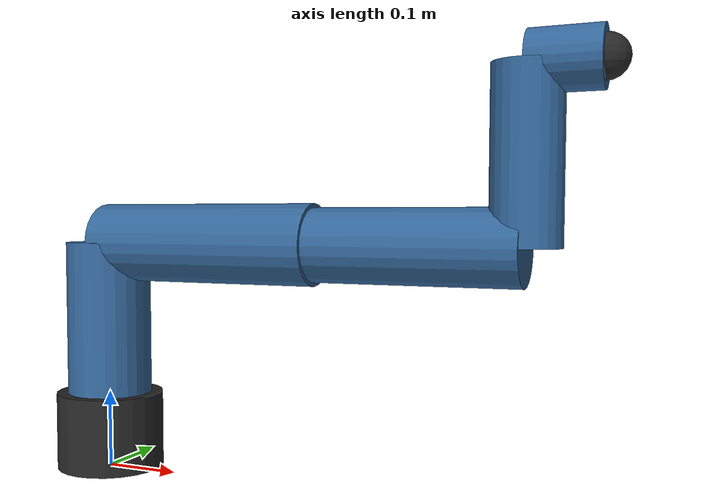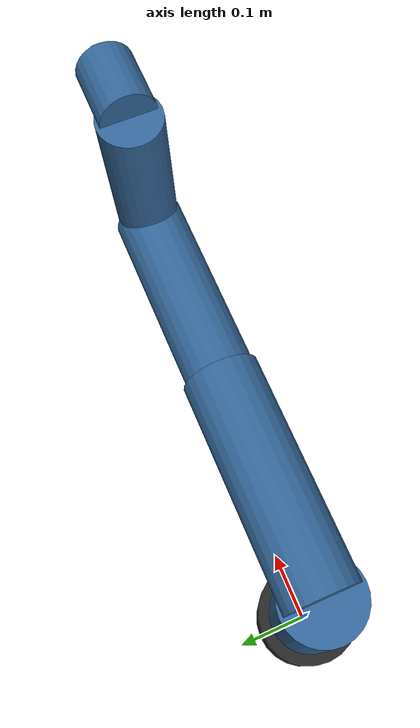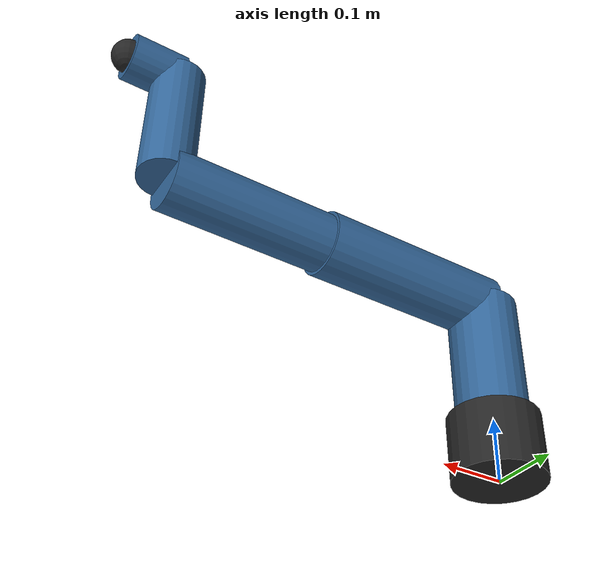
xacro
<?xml version="1.0"?>
<robot name="six_axis_arm" xmlns:xacro="http://www.ros.org/wiki/xacro">

  <!-- ===================== MATERIALS ===================== -->
  <material name="blue_grey">
    <color rgba="0.2 0.4 0.6 1.0"/>
  </material>
  <material name="dark_grey">
    <color rgba="0.15 0.15 0.15 1.0"/>
  </material>

  <!-- ===================== BASE LINK ===================== -->
  <link name="world"/>

  <joint name="world_to_base" type="fixed">
    <parent link="world"/>
    <child  link="base_link"/>
    <origin xyz="0 0 0" rpy="0 0 0"/>
  </joint>

  <link name="base_link">
    <visual>
      <origin xyz="0 0 0.05" rpy="0 0 0"/>
      <geometry><cylinder radius="0.07" length="0.1"/></geometry>
      <material name="dark_grey"/>
    </visual>
    <collision>
      <origin xyz="0 0 0.05" rpy="0 0 0"/>
      <geometry><cylinder radius="0.07" length="0.1"/></geometry>
    </collision>
    <inertial>
      <mass value="2.0"/>
      <origin xyz="0 0 0.05"/>
      <inertia ixx="0.0067" ixy="0" ixz="0"
               iyy="0.0067" iyz="0" izz="0.0098"/>
    </inertial>
  </link>

  <!-- ===================== JOINT 1 + LINK 1 ===================== -->
  <joint name="joint_1" type="revolute">
    <parent link="base_link"/>
    <child  link="link_1"/>
    <origin xyz="0 0 0.1" rpy="0 0 0"/>
    <axis xyz="0 0 1"/>
    <limit lower="-3.14159" upper="3.14159"
           effort="100" velocity="1.0"/>
    <dynamics damping="0.5" friction="0.1"/>
  </joint>

  <link name="link_1">
    <visual>
      <origin xyz="0 0 0.1" rpy="0 0 0"/>
      <geometry><cylinder radius="0.055" length="0.2"/></geometry>
      <material name="blue_grey"/>
    </visual>
    <collision>
      <origin xyz="0 0 0.1" rpy="0 0 0"/>
      <geometry><cylinder radius="0.055" length="0.2"/></geometry>
    </collision>
    <inertial>
      <mass value="1.5"/>
      <origin xyz="0 0 0.1"/>
      <inertia ixx="0.0058" ixy="0" ixz="0"
               iyy="0.0058" iyz="0" izz="0.0023"/>
    </inertial>
  </link>

  <!-- ===================== JOINT 2 + LINK 2 ===================== -->
  <joint name="joint_2" type="revolute">
    <parent link="link_1"/>
    <child  link="link_2"/>
    <origin xyz="0 0 0.2" rpy="0 0 0"/>
    <axis xyz="0 1 0"/>
    <limit lower="-1.5708" upper="1.5708"
           effort="100" velocity="1.0"/>
    <dynamics damping="0.5" friction="0.1"/>
  </joint>

  <link name="link_2">
    <visual>
      <origin xyz="0.15 0 0" rpy="0 1.5708 0"/>
      <geometry><cylinder radius="0.05" length="0.3"/></geometry>
      <material name="blue_grey"/>
    </visual>
    <collision>
      <origin xyz="0.15 0 0" rpy="0 1.5708 0"/>
      <geometry><cylinder radius="0.05" length="0.3"/></geometry>
    </collision>
    <inertial>
      <mass value="1.2"/>
      <origin xyz="0.15 0 0"/>
      <inertia ixx="0.0018" ixy="0" ixz="0"
               iyy="0.0094" iyz="0" izz="0.0094"/>
    </inertial>
  </link>

  <!-- ===================== JOINT 3 + LINK 3 ===================== -->
  <joint name="joint_3" type="revolute">
    <parent link="link_2"/>
    <child  link="link_3"/>
    <origin xyz="0.3 0 0" rpy="0 0 0"/>
    <axis xyz="0 1 0"/>
    <limit lower="-1.5708" upper="1.5708"
           effort="80" velocity="1.0"/>
    <dynamics damping="0.5" friction="0.1"/>
  </joint>

  <link name="link_3">
    <visual>
      <origin xyz="0.125 0 0" rpy="0 1.5708 0"/>
      <geometry><cylinder radius="0.045" length="0.25"/></geometry>
      <material name="blue_grey"/>
    </visual>
    <collision>
      <origin xyz="0.125 0 0" rpy="0 1.5708 0"/>
      <geometry><cylinder radius="0.045" length="0.25"/></geometry>
    </collision>
    <inertial>
      <mass value="1.0"/>
      <origin xyz="0.125 0 0"/>
      <inertia ixx="0.0013" ixy="0" ixz="0"
               iyy="0.0055" iyz="0" izz="0.0055"/>
    </inertial>
  </link>

  <!-- ===================== JOINT 4 + LINK 4 ===================== -->
  <joint name="joint_4" type="revolute">
    <parent link="link_3"/>
    <child  link="link_4"/>
    <origin xyz="0.25 0 0" rpy="0 0 0"/>
    <axis xyz="1 0 0"/>
    <limit lower="-3.14159" upper="3.14159"
           effort="60" velocity="1.2"/>
    <dynamics damping="0.3" friction="0.05"/>
  </joint>

  <link name="link_4">
    <visual>
      <origin xyz="0 0 0.1" rpy="0 0 0"/>
      <geometry><cylinder radius="0.04" length="0.2"/></geometry>
      <material name="blue_grey"/>
    </visual>
    <collision>
      <origin xyz="0 0 0.1" rpy="0 0 0"/>
      <geometry><cylinder radius="0.04" length="0.2"/></geometry>
    </collision>
    <inertial>
      <mass value="0.8"/>
      <origin xyz="0 0 0.1"/>
      <inertia ixx="0.0031" ixy="0" ixz="0"
               iyy="0.0031" iyz="0" izz="0.00064"/>
    </inertial>
  </link>

  <!-- ===================== JOINT 5 + LINK 5 ===================== -->
  <joint name="joint_5" type="revolute">
    <parent link="link_4"/>
    <child  link="link_5"/>
    <origin xyz="0 0 0.2" rpy="0 0 0"/>
    <axis xyz="0 1 0"/>
    <limit lower="-1.5708" upper="1.5708"
           effort="40" velocity="1.5"/>
    <dynamics damping="0.2" friction="0.05"/>
  </joint>

  <link name="link_5">
    <visual>
      <origin xyz="0.04 0 0" rpy="0 1.5708 0"/>
      <geometry><cylinder radius="0.035" length="0.08"/></geometry>
      <material name="blue_grey"/>
    </visual>
    <collision>
      <origin xyz="0.04 0 0" rpy="0 1.5708 0"/>
      <geometry><cylinder radius="0.035" length="0.08"/></geometry>
    </collision>
    <inertial>
      <mass value="0.5"/>
      <origin xyz="0.04 0 0"/>
      <inertia ixx="0.00035" ixy="0" ixz="0"
               iyy="0.00035" iyz="0" izz="0.000153"/>
    </inertial>
  </link>

  <!-- ===================== JOINT 6 + END EFFECTOR ===================== -->
  <joint name="joint_6" type="revolute">
    <parent link="link_5"/>
    <child  link="end_effector_link"/>
    <origin xyz="0.08 0 0" rpy="0 0 0"/>
    <axis xyz="1 0 0"/>
    <limit lower="-3.14159" upper="3.14159"
           effort="20" velocity="2.0"/>
    <dynamics damping="0.1" friction="0.02"/>
  </joint>

  <link name="end_effector_link">
    <visual>
      <origin xyz="0 0 0" rpy="0 0 0"/>
      <geometry><sphere radius="0.025"/></geometry>
      <material name="dark_grey"/>
    </visual>
    <collision>
      <origin xyz="0 0 0" rpy="0 0 0"/>
      <geometry><sphere radius="0.025"/></geometry>
    </collision>
    <inertial>
      <mass value="0.1"/>
      <origin xyz="0 0 0"/>
      <inertia ixx="0.00001" ixy="0" ixz="0"
               iyy="0.00001" iyz="0" izz="0.00001"/>
    </inertial>
  </link>

  <!-- ===================== TRANSMISSIONS ===================== -->
  <transmission name="trans_1">
    <type>transmission_interface/SimpleTransmission</type>
    <joint name="joint_1">
      <hardwareInterface>hardware_interface/PositionJointInterface</hardwareInterface>
    </joint>
    <actuator name="motor_1">
      <hardwareInterface>hardware_interface/PositionJointInterface</hardwareInterface>
      <mechanicalReduction>1</mechanicalReduction>
    </actuator>
  </transmission>

  <transmission name="trans_2">
    <type>transmission_interface/SimpleTransmission</type>
    <joint name="joint_2">
      <hardwareInterface>hardware_interface/PositionJointInterface</hardwareInterface>
    </joint>
    <actuator name="motor_2">
      <hardwareInterface>hardware_interface/PositionJointInterface</hardwareInterface>
      <mechanicalReduction>1</mechanicalReduction>
    </actuator>
  </transmission>

  <transmission name="trans_3">
    <type>transmission_interface/SimpleTransmission</type>
    <joint name="joint_3">
      <hardwareInterface>hardware_interface/PositionJointInterface</hardwareInterface>
    </joint>
    <actuator name="motor_3">
      <hardwareInterface>hardware_interface/PositionJointInterface</hardwareInterface>
      <mechanicalReduction>1</mechanicalReduction>
    </actuator>
  </transmission>

  <transmission name="trans_4">
    <type>transmission_interface/SimpleTransmission</type>
    <joint name="joint_4">
      <hardwareInterface>hardware_interface/PositionJointInterface</hardwareInterface>
    </joint>
    <actuator name="motor_4">
      <hardwareInterface>hardware_interface/PositionJointInterface</hardwareInterface>
      <mechanicalReduction>1</mechanicalReduction>
    </actuator>
  </transmission>

  <transmission name="trans_5">
    <type>transmission_interface/SimpleTransmission</type>
    <joint name="joint_5">
      <hardwareInterface>hardware_interface/PositionJointInterface</hardwareInterface>
    </joint>
    <actuator name="motor_5">
      <hardwareInterface>hardware_interface/PositionJointInterface</hardwareInterface>
      <mechanicalReduction>1</mechanicalReduction>
    </actuator>
  </transmission>

  <transmission name="trans_6">
    <type>transmission_interface/SimpleTransmission</type>
    <joint name="joint_6">
      <hardwareInterface>hardware_interface/PositionJointInterface</hardwareInterface>
    </joint>
    <actuator name="motor_6">
      <hardwareInterface>hardware_interface/PositionJointInterface</hardwareInterface>
      <mechanicalReduction>1</mechanicalReduction>
    </actuator>
  </transmission>

  <!-- ===================== GAZEBO PLUGIN ===================== -->
  <gazebo>
    <plugin name="gazebo_ros_control" filename="libgazebo_ros_control.so">
      <robotNamespace>/</robotNamespace>
      <robotSimType>gazebo_ros_control/DefaultRobotHWSim</robotSimType>
      <legacyModeNS>true</legacyModeNS>
    </plugin>
  </gazebo>

  <!-- Gazebo material colors -->
  <gazebo reference="base_link"><material>Gazebo/DarkGrey</material></gazebo>
  <gazebo reference="link_1"><material>Gazebo/Blue</material></gazebo>
  <gazebo reference="link_2"><material>Gazebo/Blue</material></gazebo>
  <gazebo reference="link_3"><material>Gazebo/Blue</material></gazebo>
  <gazebo reference="link_4"><material>Gazebo/Blue</material></gazebo>
  <gazebo reference="link_5"><material>Gazebo/Blue</material></gazebo>
  <gazebo reference="end_effector_link"><material>Gazebo/DarkGrey</material></gazebo>

</robot>
